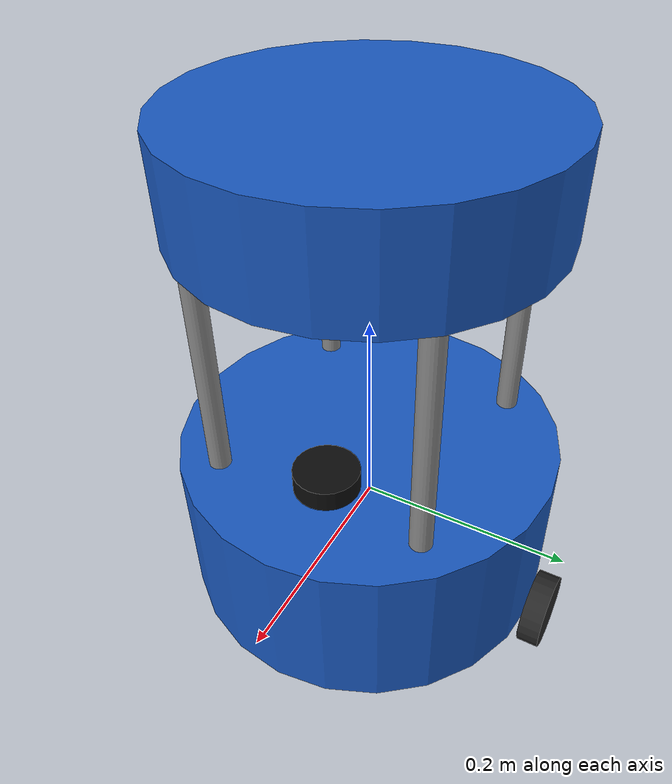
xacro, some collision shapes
<?xml version="1.0"?>

<robot name="barista_robot" xmlns:xacro="http://www.ros.org/wiki/xacro">

  <!-- ===================== ARGUMENTS ===================== -->
  <!-- include_laser defaults to true; set false to build without the lidar -->
  <xacro:arg name="include_laser" default="true"/>

  <!-- ===================== MATERIALS ===================== -->
  <material name="body_blue"><color rgba="0.10 0.35 0.75 1.0"/></material>
  <material name="tray_white"><color rgba="0.92 0.92 0.92 1.0"/></material>
  <material name="dark_grey"><color rgba="0.15 0.15 0.15 1.0"/></material>
  <material name="metal_grey"><color rgba="0.55 0.55 0.55 1.0"/></material>
  <material name="laser_black"><color rgba="0.05 0.05 0.05 1.0"/></material>

  <!-- ===================== PROPERTIES (main body + placement) ===================== -->
  <xacro:property name="body_radius" value="0.178"/>
  <xacro:property name="body_length" value="0.155"/>   <!-- 155mm -->
  <xacro:property name="rod_radius"  value="0.010"/>
  <xacro:property name="rod_length"  value="0.220"/>   <!-- 220mm -->
  <xacro:property name="rod_ring"    value="0.100"/>   <!-- rod x/y offset -->

  <!-- ===================== INCLUDES ===================== -->
  <xacro:include filename="$(find barista_robot_description)/xacro/drive_wheel.xacro"/>
  <xacro:include filename="$(find barista_robot_description)/xacro/caster_wheel.xacro"/>
  <xacro:include filename="$(find barista_robot_description)/xacro/standoff_rod.xacro"/>
  <xacro:include filename="$(find barista_robot_description)/xacro/cup_holder_tray.xacro"/>
  <xacro:include filename="$(find barista_robot_description)/xacro/laser_scanner.xacro"/>

  <!-- ===================== MAIN BODY ===================== -->
  <link name="base_link">
    <visual>
      <origin xyz="0 0 0" rpy="0 0 0"/>
      <geometry><cylinder radius="${body_radius}" length="${body_length}"/></geometry>
      <material name="body_blue"/>
    </visual>
    <collision>
      <origin xyz="0 0 0" rpy="0 0 0"/>
      <geometry><cylinder radius="${body_radius}" length="${body_length}"/></geometry>
    </collision>
    <inertial>
      <origin xyz="0 0 0" rpy="0 0 0"/>
      <mass value="2.0"/>
      <inertia ixx="0.019846" ixy="0.0" ixz="0.0"
               iyy="0.019846" iyz="0.0" izz="0.031684"/>
    </inertial>
  </link>

  <!-- ===================== DRIVE WHEELS ===================== -->
  <!-- y = body_radius + wheel_width/2 ; z = -body_length/2 (body bottom) -->
  <xacro:drive_wheel prefix="left"  parent="base_link"
                     x="0" y="${body_radius + wheel_width/2}"  z="${-body_length/2}"/>
  <xacro:drive_wheel prefix="right" parent="base_link"
                     x="0" y="${-(body_radius + wheel_width/2)}" z="${-body_length/2}"/>

  <!-- ===================== CASTER WHEELS ===================== -->
  <!-- z chosen so caster bottom == wheel bottom (robot rests level) -->
  <xacro:caster_wheel prefix="front" parent="base_link"
                      x="0.12"  y="0" z="${-body_length/2 - wheel_radius + caster_radius}"/>
  <xacro:caster_wheel prefix="back"  parent="base_link"
                      x="-0.12" y="0" z="${-body_length/2 - wheel_radius + caster_radius}"/>

  <!-- ===================== STANDOFF RODS (x4, one definition) ===================== -->
  <xacro:standoff_rod name="standoff_rod_1" parent="base_link"
                      x="${rod_ring}"  y="${rod_ring}"  z="${body_length/2 + rod_length/2}"
                      radius="${rod_radius}" length="${rod_length}"/>
  <xacro:standoff_rod name="standoff_rod_2" parent="base_link"
                      x="${rod_ring}"  y="${-rod_ring}" z="${body_length/2 + rod_length/2}"
                      radius="${rod_radius}" length="${rod_length}"/>
  <xacro:standoff_rod name="standoff_rod_3" parent="base_link"
                      x="${-rod_ring}" y="${rod_ring}"  z="${body_length/2 + rod_length/2}"
                      radius="${rod_radius}" length="${rod_length}"/>
  <xacro:standoff_rod name="standoff_rod_4" parent="base_link"
                      x="${-rod_ring}" y="${-rod_ring}" z="${body_length/2 + rod_length/2}"
                      radius="${rod_radius}" length="${rod_length}"/>

  <!-- ===================== CUP HOLDER TRAY ===================== -->
  <!-- z = body_top + rod_length + tray_thickness/2 -->
  <xacro:cup_holder_tray parent="base_link"
                         z="${body_length/2 + rod_length + tray_thickness/2}"/>

  <!-- ===================== LASER SCANNER (conditional) ===================== -->
  <xacro:if value="$(arg include_laser)">
    <xacro:laser_scanner parent="base_link" x="0.08" y="0" z="${body_length/2}"/>
  </xacro:if>

  <!-- ===================== DIFFERENTIAL DRIVE (Harmonic) ===================== -->
  <gazebo>
    <plugin filename="gz-sim-diff-drive-system"
            name="gz::sim::systems::DiffDrive">
      <left_joint>left_wheel_joint</left_joint>
      <right_joint>right_wheel_joint</right_joint>
      <wheel_separation>${2 * (body_radius + wheel_width/2)}</wheel_separation>
      <wheel_radius>${wheel_radius}</wheel_radius>
      <odom_publish_frequency>30</odom_publish_frequency>
      <topic>cmd_vel</topic>
      <odom_topic>odom</odom_topic>
      <tf_topic>/tf</tf_topic>
      <frame_id>odom</frame_id>
      <child_frame_id>base_link</child_frame_id>
    </plugin>
  </gazebo>

</robot>

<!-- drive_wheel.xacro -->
<robot xmlns:xacro="http://www.ros.org/wiki/xacro">

  <!-- Wheel geometry properties (required to live in THIS file by the spec) -->
  <xacro:property name="wheel_radius" value="0.0352"/>
  <xacro:property name="wheel_width"  value="0.0206"/>

  <xacro:macro name="drive_wheel" params="prefix parent x y z">
    <link name="${prefix}_wheel">
      <visual>
        <origin xyz="0 0 0" rpy="1.5708 0 0"/>
        <geometry><cylinder radius="${wheel_radius}" length="${wheel_width}"/></geometry>
        <material name="dark_grey"/>
      </visual>
      <collision>
        <origin xyz="0 0 0" rpy="1.5708 0 0"/>
        <geometry><cylinder radius="${wheel_radius}" length="${wheel_width}"/></geometry>
      </collision>
      <inertial>
        <origin xyz="0 0 0" rpy="1.5708 0 0"/>
        <mass value="0.3"/>
        <inertia ixx="0.000104" ixy="0.0" ixz="0.0"
                 iyy="0.000104" iyz="0.0" izz="0.000186"/>
      </inertial>
    </link>

    <joint name="${prefix}_wheel_joint" type="continuous">
      <parent link="${parent}"/>
      <child link="${prefix}_wheel"/>
      <origin xyz="${x} ${y} ${z}" rpy="0 0 0"/>
      <axis xyz="0 1 0"/>
    </joint>
  </xacro:macro>

</robot>

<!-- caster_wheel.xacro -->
<robot xmlns:xacro="http://www.ros.org/wiki/xacro">

  <xacro:property name="caster_radius" value="0.025"/>

  <xacro:macro name="caster_wheel" params="prefix parent x y z">
    <link name="${prefix}_caster">
      <visual>
        <origin xyz="0 0 0" rpy="0 0 0"/>
        <geometry><sphere radius="${caster_radius}"/></geometry>
        <material name="metal_grey"/>
      </visual>
      <collision>
        <origin xyz="0 0 0" rpy="0 0 0"/>
        <geometry><sphere radius="${caster_radius}"/></geometry>
      </collision>
      <inertial>
        <origin xyz="0 0 0" rpy="0 0 0"/>
        <mass value="0.05"/>
        <inertia ixx="0.0000125" ixy="0.0" ixz="0.0"
                 iyy="0.0000125" iyz="0.0" izz="0.0000125"/>
      </inertial>
    </link>

    <joint name="${prefix}_caster_joint" type="fixed">
      <parent link="${parent}"/>
      <child link="${prefix}_caster"/>
      <origin xyz="${x} ${y} ${z}" rpy="0 0 0"/>
    </joint>
  </xacro:macro>

</robot>

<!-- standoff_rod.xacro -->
<robot xmlns:xacro="http://www.ros.org/wiki/xacro">

  <xacro:macro name="standoff_rod" params="name parent x y z radius length">
    <link name="${name}">
      <visual>
        <origin xyz="0 0 0" rpy="0 0 0"/>
        <geometry><cylinder radius="${radius}" length="${length}"/></geometry>
        <material name="metal_grey"/>
      </visual>
      <collision>
        <origin xyz="0 0 0" rpy="0 0 0"/>
        <geometry><cylinder radius="${radius}" length="${length}"/></geometry>
      </collision>
      <inertial>
        <origin xyz="0 0 0" rpy="0 0 0"/>
        <mass value="0.10"/>
        <inertia ixx="0.000406" ixy="0.0" ixz="0.0"
                 iyy="0.000406" iyz="0.0" izz="0.000005"/>
      </inertial>
    </link>

    <joint name="${name}_joint" type="fixed">
      <parent link="${parent}"/>
      <child link="${name}"/>
      <origin xyz="${x} ${y} ${z}" rpy="0 0 0"/>
    </joint>
  </xacro:macro>

</robot>

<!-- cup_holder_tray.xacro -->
<robot xmlns:xacro="http://www.ros.org/wiki/xacro">

  <!-- Cup holder tray geometry (Ø320 -> r0.160, 90mm thick, from the drawing) -->
  <xacro:property name="tray_radius"    value="0.160"/>
  <xacro:property name="tray_thickness" value="0.090"/>

  <!--
    cup_holder_tray: the top plate sitting above the standoff rods.
    params:
      parent -> link to attach to
      z      -> joint origin height in the parent frame
  -->
  <xacro:macro name="cup_holder_tray" params="parent z">
    <link name="cup_holder_tray">
      <visual>
        <origin xyz="0 0 0" rpy="0 0 0"/>
        <geometry><cylinder radius="${tray_radius}" length="${tray_thickness}"/></geometry>
        <material name="body_blue"/>
      </visual>
      <collision>
        <origin xyz="0 0 0" rpy="0 0 0"/>
        <geometry><cylinder radius="${tray_radius}" length="${tray_thickness}"/></geometry>
      </collision>
      <inertial>
        <origin xyz="0 0 0" rpy="0 0 0"/>
        <mass value="0.5"/>
        <inertia ixx="0.003538" ixy="0.0" ixz="0.0"
                 iyy="0.003538" iyz="0.0" izz="0.006400"/>
      </inertial>
    </link>

    <joint name="cup_holder_tray_joint" type="fixed">
      <parent link="${parent}"/>
      <child link="cup_holder_tray"/>
      <origin xyz="0 0 ${z}" rpy="0 0 0"/>
    </joint>
  </xacro:macro>

</robot>

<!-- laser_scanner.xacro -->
<robot xmlns:xacro="http://www.ros.org/wiki/xacro">

  <xacro:macro name="laser_scanner" params="parent x y z">
    <link name="laser_scan_link">
      <visual>
        <origin xyz="0 0 0" rpy="0 0 0"/>

        <geometry>
          <mesh filename="package://barista_robot_description/meshes/ouster_os1_32.dae"/>
        </geometry>
        <material name="laser_black"/>
      </visual>
      <collision>
        <origin xyz="0 0 0" rpy="0 0 0"/>
        <geometry><cylinder radius="0.030" length="0.040"/></geometry>
      </collision>
      <inertial>
        <origin xyz="0 0 0" rpy="0 0 0"/>
        <mass value="0.10"/>
        <inertia ixx="0.0000358" ixy="0.0" ixz="0.0"
                 iyy="0.0000358" iyz="0.0" izz="0.000045"/>
      </inertial>
    </link>

    <joint name="laser_scan_joint" type="fixed">
      <parent link="${parent}"/>
      <child link="laser_scan_link"/>
      <origin xyz="${x} ${y} ${z}" rpy="0 0 0"/>
    </joint>

    <!-- Gazebo Harmonic gpu_lidar -->
    <gazebo reference="laser_scan_link">
      <sensor name="laser_scanner" type="gpu_lidar">
        <pose>0 0 0 0 0 0</pose>
        <topic>scan</topic>
        <update_rate>10</update_rate>
        <always_on>true</always_on>
        <visualize>true</visualize>
        <gz_frame_id>laser_scan_link</gz_frame_id>
        <lidar>
          <scan>
            <horizontal>
              <samples>360</samples>
              <resolution>1</resolution>
              <min_angle>-3.141592</min_angle>
              <max_angle>3.141592</max_angle>
            </horizontal>
          </scan>
          <range>
            <min>0.12</min>
            <max>10.0</max>
            <resolution>0.015</resolution>
          </range>
        </lidar>
      </sensor>
    </gazebo>
  </xacro:macro>

</robot>
